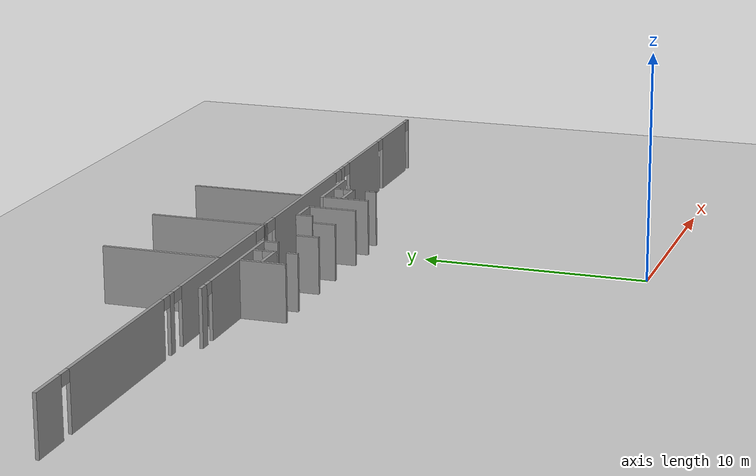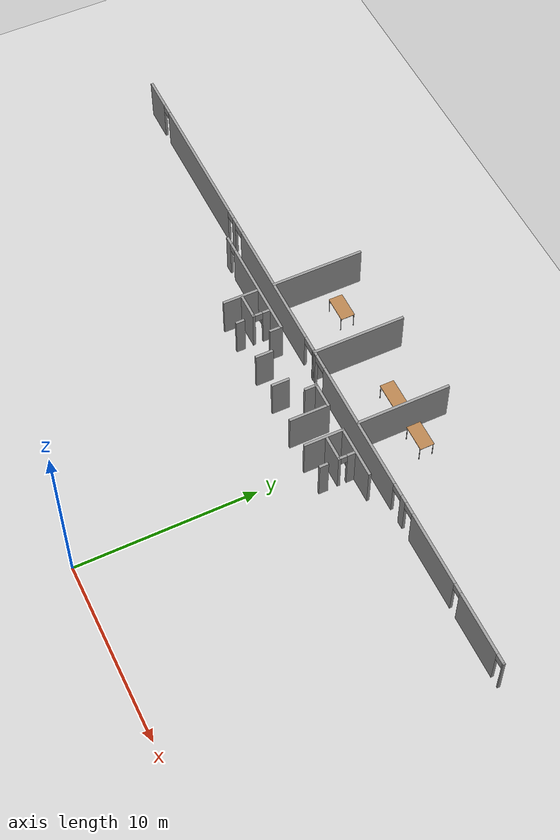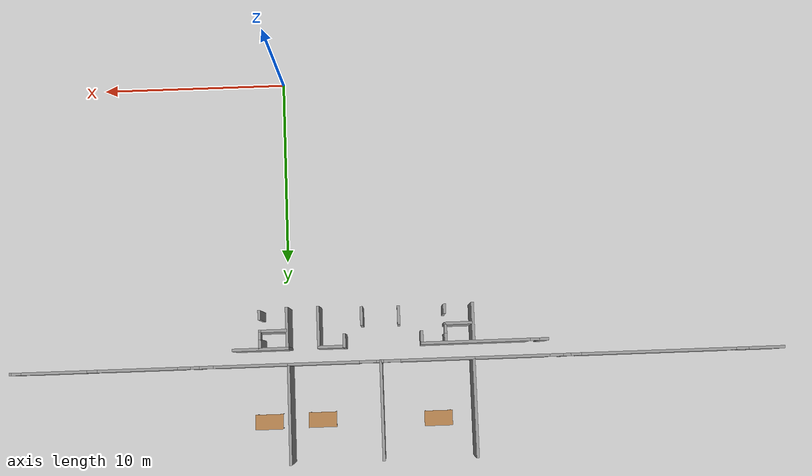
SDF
<sdf version="1.6">
 <world name="default">
  <model name="ground_plane">
   <static>1</static>
   <link name="link">
    <collision name="collision">
     <geometry><plane><normal>0 0 1</normal><size>100 100</size></plane></geometry>
     <surface><friction><ode><mu>100</mu><mu2>50</mu2></ode></friction></surface>
    </collision>
    <visual name="visual">
     <cast_shadows>0</cast_shadows>
     <geometry><plane><normal>0 0 1</normal><size>100 100</size></plane></geometry>
     <material>
      <script><uri>file://media/materials/scripts/gazebo.material</uri><name>Gazebo/Grey</name></script>
     </material>
    </visual>
   </link>
  </model>
  <model name="se1f1_fin.sdf">
   <pose>1.7543 -3.15003 0 0 -0 0</pose>
   <link name="Wall_112">
    <pose>-7.6182 18.7939 0 0 -0 0</pose>
    <visual name="Wall_112_Visual_0">
     <pose>-19.4252 0 1.25 0 -0 0</pose>
     <geometry><box><size>1.89964 0.15 2.5</size></box></geometry>
     <material>
      <script><uri>file://media/materials/scripts/gazebo.material</uri><name>Gazebo/Grey</name></script>
      <ambient>1 1 1 1</ambient>
     </material>
     <meta><layer>0</layer></meta>
    </visual>
    <collision name="Wall_112_Collision_0">
     <geometry><box><size>1.89964 0.15 2.5</size></box></geometry>
     <pose>-19.4252 0 1.25 0 -0 0</pose>
    </collision>
    <visual name="Wall_112_Visual_1">
     <pose>-13.7447 0 1.25 0 -0 0</pose>
     <geometry><box><size>8.15111 0.15 2.5</size></box></geometry>
     <material>
      <script><uri>file://media/materials/scripts/gazebo.material</uri><name>Gazebo/Grey</name></script>
      <ambient>1 1 1 1</ambient>
     </material>
     <meta><layer>0</layer></meta>
    </visual>
    <collision name="Wall_112_Collision_1">
     <geometry><box><size>8.15111 0.15 2.5</size></box></geometry>
     <pose>-13.7447 0 1.25 0 -0 0</pose>
    </collision>
    <visual name="Wall_112_Visual_2">
     <pose>-8.90866 0 1.25 0 -0 0</pose>
     <geometry><box><size>0.38552 0.15 2.5</size></box></geometry>
     <material>
      <script><uri>file://media/materials/scripts/gazebo.material</uri><name>Gazebo/Grey</name></script>
      <ambient>1 1 1 1</ambient>
     </material>
     <meta><layer>0</layer></meta>
    </visual>
    <collision name="Wall_112_Collision_2">
     <geometry><box><size>0.38552 0.15 2.5</size></box></geometry>
     <pose>-8.90866 0 1.25 0 -0 0</pose>
    </collision>
    <visual name="Wall_112_Visual_3">
     <pose>-4.07266 0 1.25 0 -0 0</pose>
     <geometry><box><size>7.83629 0.15 2.5</size></box></geometry>
     <material>
      <script><uri>file://media/materials/scripts/gazebo.material</uri><name>Gazebo/Grey</name></script>
      <ambient>1 1 1 1</ambient>
     </material>
     <meta><layer>0</layer></meta>
    </visual>
    <collision name="Wall_112_Collision_3">
     <geometry><box><size>7.83629 0.15 2.5</size></box></geometry>
     <pose>-4.07266 0 1.25 0 -0 0</pose>
    </collision>
    <visual name="Wall_112_Visual_4">
     <pose>0.933869 0 1.25 0 -0 0</pose>
     <geometry><box><size>0.376774 0.15 2.5</size></box></geometry>
     <material>
      <script><uri>file://media/materials/scripts/gazebo.material</uri><name>Gazebo/Grey</name></script>
      <ambient>1 1 1 1</ambient>
     </material>
     <meta><layer>0</layer></meta>
    </visual>
    <collision name="Wall_112_Collision_4">
     <geometry><box><size>0.376774 0.15 2.5</size></box></geometry>
     <pose>0.933869 0 1.25 0 -0 0</pose>
    </collision>
    <visual name="Wall_112_Visual_5">
     <pose>5.85295 0 1.25 0 -0 0</pose>
     <geometry><box><size>7.66139 0.15 2.5</size></box></geometry>
     <material>
      <script><uri>file://media/materials/scripts/gazebo.material</uri><name>Gazebo/Grey</name></script>
      <ambient>1 1 1 1</ambient>
     </material>
     <meta><layer>0</layer></meta>
    </visual>
    <collision name="Wall_112_Collision_5">
     <geometry><box><size>7.66139 0.15 2.5</size></box></geometry>
     <pose>5.85295 0 1.25 0 -0 0</pose>
    </collision>
    <visual name="Wall_112_Visual_6">
     <pose>10.654 0 1.25 0 -0 0</pose>
     <geometry><box><size>0.45548 0.15 2.5</size></box></geometry>
     <material>
      <script><uri>file://media/materials/scripts/gazebo.material</uri><name>Gazebo/Grey</name></script>
      <ambient>1 1 1 1</ambient>
     </material>
     <meta><layer>0</layer></meta>
    </visual>
    <collision name="Wall_112_Collision_6">
     <geometry><box><size>0.45548 0.15 2.5</size></box></geometry>
     <pose>10.654 0 1.25 0 -0 0</pose>
    </collision>
    <visual name="Wall_112_Visual_7">
     <pose>13.6666 0 1.25 0 -0 0</pose>
     <geometry><box><size>4.18961 0.15 2.5</size></box></geometry>
     <material>
      <script><uri>file://media/materials/scripts/gazebo.material</uri><name>Gazebo/Grey</name></script>
      <ambient>1 1 1 1</ambient>
     </material>
     <meta><layer>0</layer></meta>
    </visual>
    <collision name="Wall_112_Collision_7">
     <geometry><box><size>4.18961 0.15 2.5</size></box></geometry>
     <pose>13.6666 0 1.25 0 -0 0</pose>
    </collision>
    <visual name="Wall_112_Visual_8">
     <pose>18.0435 0 1.25 0 -0 0</pose>
     <geometry><box><size>3.46377 0.15 2.5</size></box></geometry>
     <material>
      <script><uri>file://media/materials/scripts/gazebo.material</uri><name>Gazebo/Grey</name></script>
      <ambient>1 1 1 1</ambient>
     </material>
     <meta><layer>0</layer></meta>
    </visual>
    <collision name="Wall_112_Collision_8">
     <geometry><box><size>3.46377 0.15 2.5</size></box></geometry>
     <pose>18.0435 0 1.25 0 -0 0</pose>
    </collision>
    <visual name="Wall_112_Visual_9">
     <pose>20.3328 0 1.25 0 -0 0</pose>
     <geometry><box><size>0.084374 0.15 2.5</size></box></geometry>
     <material>
      <script><uri>file://media/materials/scripts/gazebo.material</uri><name>Gazebo/Grey</name></script>
      <ambient>1 1 1 1</ambient>
     </material>
     <meta><layer>0</layer></meta>
    </visual>
    <collision name="Wall_112_Collision_9">
     <geometry><box><size>0.084374 0.15 2.5</size></box></geometry>
     <pose>20.3328 0 1.25 0 -0 0</pose>
    </collision>
    <visual name="Wall_112_Visual_10">
     <pose>-18.1478 0 2.25 0 -0 0</pose>
     <geometry><box><size>0.655139 0.15 0.5</size></box></geometry>
     <material>
      <script><uri>file://media/materials/scripts/gazebo.material</uri><name>Gazebo/Grey</name></script>
      <ambient>1 1 1 1</ambient>
     </material>
     <meta><layer>0</layer></meta>
    </visual>
    <collision name="Wall_112_Collision_10">
     <geometry><box><size>0.655139 0.15 0.5</size></box></geometry>
     <pose>-18.1478 0 2.25 0 -0 0</pose>
    </collision>
    <visual name="Wall_112_Visual_11">
     <pose>-9.38527 0 2.25 0 -0 0</pose>
     <geometry><box><size>0.567689 0.15 0.5</size></box></geometry>
     <material>
      <script><uri>file://media/materials/scripts/gazebo.material</uri><name>Gazebo/Grey</name></script>
      <ambient>1 1 1 1</ambient>
     </material>
     <meta><layer>0</layer></meta>
    </visual>
    <collision name="Wall_112_Collision_11">
     <geometry><box><size>0.567689 0.15 0.5</size></box></geometry>
     <pose>-9.38527 0 2.25 0 -0 0</pose>
    </collision>
    <visual name="Wall_112_Visual_12">
     <pose>-8.35335 0 2.25 0 -0 0</pose>
     <geometry><box><size>0.725099 0.15 0.5</size></box></geometry>
     <material>
      <script><uri>file://media/materials/scripts/gazebo.material</uri><name>Gazebo/Grey</name></script>
      <ambient>1 1 1 1</ambient>
     </material>
     <meta><layer>0</layer></meta>
    </visual>
    <collision name="Wall_112_Collision_12">
     <geometry><box><size>0.725099 0.15 0.5</size></box></geometry>
     <pose>-8.35335 0 2.25 0 -0 0</pose>
    </collision>
    <visual name="Wall_112_Visual_13">
     <pose>0.295482 0 2.25 0 -0 0</pose>
     <geometry><box><size>0.9 0.15 0.5</size></box></geometry>
     <material>
      <script><uri>file://media/materials/scripts/gazebo.material</uri><name>Gazebo/Grey</name></script>
      <ambient>1 1 1 1</ambient>
     </material>
     <meta><layer>0</layer></meta>
    </visual>
    <collision name="Wall_112_Collision_13">
     <geometry><box><size>0.9 0.15 0.5</size></box></geometry>
     <pose>0.295482 0 2.25 0 -0 0</pose>
    </collision>
    <visual name="Wall_112_Visual_14">
     <pose>1.57226 0 2.25 0 -0 0</pose>
     <geometry><box><size>0.9 0.15 0.5</size></box></geometry>
     <material>
      <script><uri>file://media/materials/scripts/gazebo.material</uri><name>Gazebo/Grey</name></script>
      <ambient>1 1 1 1</ambient>
     </material>
     <meta><layer>0</layer></meta>
    </visual>
    <collision name="Wall_112_Collision_14">
     <geometry><box><size>0.9 0.15 0.5</size></box></geometry>
     <pose>1.57226 0 2.25 0 -0 0</pose>
    </collision>
    <visual name="Wall_112_Visual_15">
     <pose>10.0549 0 2.25 0 -0 0</pose>
     <geometry><box><size>0.742589 0.15 0.5</size></box></geometry>
     <material>
      <script><uri>file://media/materials/scripts/gazebo.material</uri><name>Gazebo/Grey</name></script>
      <ambient>1 1 1 1</ambient>
     </material>
     <meta><layer>0</layer></meta>
    </visual>
    <collision name="Wall_112_Collision_15">
     <geometry><box><size>0.742589 0.15 0.5</size></box></geometry>
     <pose>10.0549 0 2.25 0 -0 0</pose>
    </collision>
    <visual name="Wall_112_Visual_16">
     <pose>11.2268 0 2.25 0 -0 0</pose>
     <geometry><box><size>0.690119 0.15 0.5</size></box></geometry>
     <material>
      <script><uri>file://media/materials/scripts/gazebo.material</uri><name>Gazebo/Grey</name></script>
      <ambient>1 1 1 1</ambient>
     </material>
     <meta><layer>0</layer></meta>
    </visual>
    <collision name="Wall_112_Collision_16">
     <geometry><box><size>0.690119 0.15 0.5</size></box></geometry>
     <pose>11.2268 0 2.25 0 -0 0</pose>
    </collision>
    <visual name="Wall_112_Visual_17">
     <pose>16.0365 0 2.25 0 -0 0</pose>
     <geometry><box><size>0.550199 0.15 0.5</size></box></geometry>
     <material>
      <script><uri>file://media/materials/scripts/gazebo.material</uri><name>Gazebo/Grey</name></script>
      <ambient>1 1 1 1</ambient>
     </material>
     <meta><layer>0</layer></meta>
    </visual>
    <collision name="Wall_112_Collision_17">
     <geometry><box><size>0.550199 0.15 0.5</size></box></geometry>
     <pose>16.0365 0 2.25 0 -0 0</pose>
    </collision>
    <visual name="Wall_112_Visual_18">
     <pose>20.033 0 2.25 0 -0 0</pose>
     <geometry><box><size>0.515219 0.15 0.5</size></box></geometry>
     <material>
      <script><uri>file://media/materials/scripts/gazebo.material</uri><name>Gazebo/Grey</name></script>
      <ambient>1 1 1 1</ambient>
     </material>
     <meta><layer>0</layer></meta>
    </visual>
    <collision name="Wall_112_Collision_18">
     <geometry><box><size>0.515219 0.15 0.5</size></box></geometry>
     <pose>20.033 0 2.25 0 -0 0</pose>
    </collision>
   </link>
   <link name="Wall_120">
    <collision name="Wall_120_Collision">
     <geometry><box><size>5.25 0.15 2.5</size></box></geometry>
     <pose>0 0 1.25 0 -0 0</pose>
    </collision>
    <visual name="Wall_120_Visual">
     <pose>0 0 1.25 0 -0 0</pose>
     <geometry><box><size>5.25 0.15 2.5</size></box></geometry>
     <material>
      <script><uri>file://media/materials/scripts/gazebo.material</uri><name>Gazebo/Grey</name></script>
      <ambient>1 1 1 1</ambient>
     </material>
     <meta><layer>0</layer></meta>
    </visual>
    <pose>-11.6158 21.3539 0 0 -0 1.5708</pose>
   </link>
   <link name="Wall_122">
    <collision name="Wall_122_Collision">
     <geometry><box><size>5.25 0.15 2.5</size></box></geometry>
     <pose>0 0 1.25 0 -0 0</pose>
    </collision>
    <visual name="Wall_122_Visual">
     <pose>0 0 1.25 0 -0 0</pose>
     <geometry><box><size>5.25 0.15 2.5</size></box></geometry>
     <material>
      <script><uri>file://media/materials/scripts/gazebo.material</uri><name>Gazebo/Grey</name></script>
      <ambient>1 1 1 1</ambient>
     </material>
     <meta><layer>0</layer></meta>
    </visual>
    <pose>-6.72817 21.3338 0 0 -0 1.5708</pose>
   </link>
   <link name="Wall_124">
    <collision name="Wall_124_Collision">
     <geometry><box><size>5.25 0.15 2.5</size></box></geometry>
     <pose>0 0 1.25 0 -0 0</pose>
    </collision>
    <visual name="Wall_124_Visual">
     <pose>0 0 1.25 0 -0 0</pose>
     <geometry><box><size>5.25 0.15 2.5</size></box></geometry>
     <material>
      <script><uri>file://media/materials/scripts/gazebo.material</uri><name>Gazebo/Grey</name></script>
      <ambient>1 1 1 1</ambient>
     </material>
     <meta><layer>0</layer></meta>
    </visual>
    <pose>-1.8808 21.3941 0 0 -0 1.5708</pose>
   </link>
   <link name="Wall_24">
    <pose>-12.2339 17.933 0 0 -0 0</pose>
    <visual name="Wall_24_Visual_0">
     <pose>-3.12149 0 1.25 0 -0 0</pose>
     <geometry><box><size>0.507011 0.15 2.5</size></box></geometry>
     <material>
      <script><uri>file://media/materials/scripts/gazebo.material</uri><name>Gazebo/Grey</name></script>
      <ambient>1 1 1 1</ambient>
     </material>
     <meta><layer>0</layer></meta>
    </visual>
    <collision name="Wall_24_Collision_0">
     <geometry><box><size>0.507011 0.15 2.5</size></box></geometry>
     <pose>-3.12149 0 1.25 0 -0 0</pose>
    </collision>
    <visual name="Wall_24_Visual_1">
     <pose>0.495566 0 1.25 0 -0 0</pose>
     <geometry><box><size>5.75887 0.15 2.5</size></box></geometry>
     <material>
      <script><uri>file://media/materials/scripts/gazebo.material</uri><name>Gazebo/Grey</name></script>
      <ambient>1 1 1 1</ambient>
     </material>
     <meta><layer>0</layer></meta>
    </visual>
    <collision name="Wall_24_Collision_1">
     <geometry><box><size>5.75887 0.15 2.5</size></box></geometry>
     <pose>0.495566 0 1.25 0 -0 0</pose>
    </collision>
    <visual name="Wall_24_Visual_2">
     <pose>-2.62593 0 2.25 0 -0 0</pose>
     <geometry><box><size>0.484121 0.15 0.5</size></box></geometry>
     <material>
      <script><uri>file://media/materials/scripts/gazebo.material</uri><name>Gazebo/Grey</name></script>
      <ambient>1 1 1 1</ambient>
     </material>
     <meta><layer>0</layer></meta>
    </visual>
    <collision name="Wall_24_Collision_2">
     <geometry><box><size>0.484121 0.15 0.5</size></box></geometry>
     <pose>-2.62593 0 2.25 0 -0 0</pose>
    </collision>
   </link>
   <link name="Wall_25">
    <collision name="Wall_25_Collision">
     <geometry><box><size>0.75 0.15 2.5</size></box></geometry>
     <pose>0 0 1.25 0 -0 0</pose>
    </collision>
    <visual name="Wall_25_Visual">
     <pose>0 0 1.25 0 -0 0</pose>
     <geometry><box><size>0.75 0.15 2.5</size></box></geometry>
     <material>
      <script><uri>file://media/materials/scripts/gazebo.material</uri><name>Gazebo/Grey</name></script>
      <ambient>1 1 1 1</ambient>
     </material>
     <meta><layer>0</layer></meta>
    </visual>
    <pose>-8.93387 17.633 0 0 0 -1.5708</pose>
   </link>
   <link name="Wall_27">
    <collision name="Wall_27_Collision">
     <geometry><box><size>0.75 0.15 2.5</size></box></geometry>
     <pose>0 0 1.25 0 -0 0</pose>
    </collision>
    <visual name="Wall_27_Visual">
     <pose>0 0 1.25 0 -0 0</pose>
     <geometry><box><size>0.75 0.15 2.5</size></box></geometry>
     <material>
      <script><uri>file://media/materials/scripts/gazebo.material</uri><name>Gazebo/Grey</name></script>
      <ambient>1 1 1 1</ambient>
     </material>
     <meta><layer>0</layer></meta>
    </visual>
    <pose>-4.84059 17.6493 0 0 -0 1.5708</pose>
   </link>
   <link name="Wall_29">
    <collision name="Wall_29_Collision">
     <geometry><box><size>1.5 0.15 2.5</size></box></geometry>
     <pose>0 0 1.25 0 -0 0</pose>
    </collision>
    <visual name="Wall_29_Visual">
     <pose>0 0 1.25 0 -0 0</pose>
     <geometry><box><size>1.5 0.15 2.5</size></box></geometry>
     <material>
      <script><uri>file://media/materials/scripts/gazebo.material</uri><name>Gazebo/Grey</name></script>
      <ambient>1 1 1 1</ambient>
     </material>
     <meta><layer>0</layer></meta>
    </visual>
    <pose>-4.16559 17.9493 0 0 -0 0</pose>
   </link>
   <link name="Wall_30">
    <collision name="Wall_30_Collision">
     <geometry><box><size>2.25 0.15 2.5</size></box></geometry>
     <pose>0 0 1.25 0 -0 0</pose>
    </collision>
    <visual name="Wall_30_Visual">
     <pose>0 0 1.25 0 -0 0</pose>
     <geometry><box><size>2.25 0.15 2.5</size></box></geometry>
     <material>
      <script><uri>file://media/materials/scripts/gazebo.material</uri><name>Gazebo/Grey</name></script>
      <ambient>1 1 1 1</ambient>
     </material>
     <meta><layer>0</layer></meta>
    </visual>
    <pose>-3.49059 16.8993 0 0 0 -1.5708</pose>
   </link>
   <link name="Wall_33">
    <collision name="Wall_33_Collision">
     <geometry><box><size>3 0.15 2.5</size></box></geometry>
     <pose>0 0 1.25 0 -0 0</pose>
    </collision>
    <visual name="Wall_33_Visual">
     <pose>0 0 1.25 0 -0 0</pose>
     <geometry><box><size>3 0.15 2.5</size></box></geometry>
     <material>
      <script><uri>file://media/materials/scripts/gazebo.material</uri><name>Gazebo/Grey</name></script>
      <ambient>1 1 1 1</ambient>
     </material>
     <meta><layer>0</layer></meta>
    </visual>
    <pose>-0.413543 17.9493 0 0 -0 3.14159</pose>
   </link>
   <link name="Wall_34">
    <collision name="Wall_34_Collision">
     <geometry><box><size>2.25 0.15 2.5</size></box></geometry>
     <pose>0 0 1.25 0 -0 0</pose>
    </collision>
    <visual name="Wall_34_Visual">
     <pose>0 0 1.25 0 -0 0</pose>
     <geometry><box><size>2.25 0.15 2.5</size></box></geometry>
     <material>
      <script><uri>file://media/materials/scripts/gazebo.material</uri><name>Gazebo/Grey</name></script>
      <ambient>1 1 1 1</ambient>
     </material>
     <meta><layer>0</layer></meta>
    </visual>
    <pose>-1.83854 16.8993 0 0 0 -1.5708</pose>
   </link>
   <link name="Wall_43">
    <pose>-0.398353 17.4297 0 0 0 -1.5708</pose>
    <visual name="Wall_43_Visual_0">
     <pose>-0.253497 0 1.25 0 -0 0</pose>
     <geometry><box><size>0.493006 0.15 2.5</size></box></geometry>
     <material>
      <script><uri>file://media/materials/scripts/gazebo.material</uri><name>Gazebo/Grey</name></script>
      <ambient>1 1 1 1</ambient>
     </material>
     <meta><layer>0</layer></meta>
    </visual>
    <collision name="Wall_43_Collision_0">
     <geometry><box><size>0.493006 0.15 2.5</size></box></geometry>
     <pose>-0.253497 0 1.25 0 -0 0</pose>
    </collision>
    <visual name="Wall_43_Visual_1">
     <pose>0.450756 0 1.25 0 -0 0</pose>
     <geometry><box><size>0.098488 0.15 2.5</size></box></geometry>
     <material>
      <script><uri>file://media/materials/scripts/gazebo.material</uri><name>Gazebo/Grey</name></script>
      <ambient>1 1 1 1</ambient>
     </material>
     <meta><layer>0</layer></meta>
    </visual>
    <collision name="Wall_43_Collision_1">
     <geometry><box><size>0.098488 0.15 2.5</size></box></geometry>
     <pose>0.450756 0 1.25 0 -0 0</pose>
    </collision>
    <visual name="Wall_43_Visual_2">
     <pose>0.197259 0 2.25 0 -0 0</pose>
     <geometry><box><size>0.408507 0.15 0.5</size></box></geometry>
     <material>
      <script><uri>file://media/materials/scripts/gazebo.material</uri><name>Gazebo/Grey</name></script>
      <ambient>1 1 1 1</ambient>
     </material>
     <meta><layer>0</layer></meta>
    </visual>
    <collision name="Wall_43_Collision_2">
     <geometry><box><size>0.408507 0.15 0.5</size></box></geometry>
     <pose>0.197259 0 2.25 0 -0 0</pose>
    </collision>
   </link>
   <link name="Wall_44">
    <collision name="Wall_44_Collision">
     <geometry><box><size>1.5 0.15 2.5</size></box></geometry>
     <pose>0 0 1.25 0 -0 0</pose>
    </collision>
    <visual name="Wall_44_Visual">
     <pose>0 0 1.25 0 -0 0</pose>
     <geometry><box><size>1.5 0.15 2.5</size></box></geometry>
     <material>
      <script><uri>file://media/materials/scripts/gazebo.material</uri><name>Gazebo/Grey</name></script>
      <ambient>1 1 1 1</ambient>
     </material>
     <meta><layer>0</layer></meta>
    </visual>
    <pose>-1.07335 17.0047 0 0 -0 3.14159</pose>
   </link>
   <link name="Wall_46">
    <collision name="Wall_46_Collision">
     <geometry><box><size>0.5 0.15 2.5</size></box></geometry>
     <pose>0 0 1.25 0 -0 0</pose>
    </collision>
    <visual name="Wall_46_Visual">
     <pose>0 0 1.25 0 -0 0</pose>
     <geometry><box><size>0.5 0.15 2.5</size></box></geometry>
     <material>
      <script><uri>file://media/materials/scripts/gazebo.material</uri><name>Gazebo/Grey</name></script>
      <ambient>1 1 1 1</ambient>
     </material>
     <meta><layer>0</layer></meta>
    </visual>
    <pose>-0.390648 16.1523 0 0 0 -1.5708</pose>
   </link>
   <link name="Wall_50">
    <collision name="Wall_50_Collision">
     <geometry><box><size>2 0.15 2.5</size></box></geometry>
     <pose>0 0 1.25 0 -0 0</pose>
    </collision>
    <visual name="Wall_50_Visual">
     <pose>0 0 1.25 0 -0 0</pose>
     <geometry><box><size>2 0.15 2.5</size></box></geometry>
     <material>
      <script><uri>file://media/materials/scripts/gazebo.material</uri><name>Gazebo/Grey</name></script>
      <ambient>1 1 1 1</ambient>
     </material>
     <meta><layer>0</layer></meta>
    </visual>
    <pose>-11.6546 16.8614 0 0 0 -1.5708</pose>
   </link>
   <link name="Wall_52">
    <pose>-10.1946 17.3614 0 0 0 -1.5708</pose>
    <visual name="Wall_52_Visual_0">
     <pose>-0.291417 0 1.25 0 -0 0</pose>
     <geometry><box><size>0.417167 0.15 2.5</size></box></geometry>
     <material>
      <script><uri>file://media/materials/scripts/gazebo.material</uri><name>Gazebo/Grey</name></script>
      <ambient>1 1 1 1</ambient>
     </material>
     <meta><layer>0</layer></meta>
    </visual>
    <collision name="Wall_52_Collision_0">
     <geometry><box><size>0.417167 0.15 2.5</size></box></geometry>
     <pose>-0.291417 0 1.25 0 -0 0</pose>
    </collision>
    <visual name="Wall_52_Visual_1">
     <pose>0.443082 0 1.25 0 -0 0</pose>
     <geometry><box><size>0.113835 0.15 2.5</size></box></geometry>
     <material>
      <script><uri>file://media/materials/scripts/gazebo.material</uri><name>Gazebo/Grey</name></script>
      <ambient>1 1 1 1</ambient>
     </material>
     <meta><layer>0</layer></meta>
    </visual>
    <collision name="Wall_52_Collision_1">
     <geometry><box><size>0.113835 0.15 2.5</size></box></geometry>
     <pose>0.443082 0 1.25 0 -0 0</pose>
    </collision>
    <visual name="Wall_52_Visual_2">
     <pose>0.151666 0 2.25 0 -0 0</pose>
     <geometry><box><size>0.468998 0.15 0.5</size></box></geometry>
     <material>
      <script><uri>file://media/materials/scripts/gazebo.material</uri><name>Gazebo/Grey</name></script>
      <ambient>1 1 1 1</ambient>
     </material>
     <meta><layer>0</layer></meta>
    </visual>
    <collision name="Wall_52_Collision_2">
     <geometry><box><size>0.468998 0.15 0.5</size></box></geometry>
     <pose>0.151666 0 2.25 0 -0 0</pose>
    </collision>
   </link>
   <link name="Wall_54">
    <collision name="Wall_54_Collision">
     <geometry><box><size>1.5 0.15 2.5</size></box></geometry>
     <pose>0 0 1.25 0 -0 0</pose>
    </collision>
    <visual name="Wall_54_Visual">
     <pose>0 0 1.25 0 -0 0</pose>
     <geometry><box><size>1.5 0.15 2.5</size></box></geometry>
     <material>
      <script><uri>file://media/materials/scripts/gazebo.material</uri><name>Gazebo/Grey</name></script>
      <ambient>1 1 1 1</ambient>
     </material>
     <meta><layer>0</layer></meta>
    </visual>
    <pose>-10.8696 16.9364 0 0 -0 3.14159</pose>
   </link>
   <link name="Wall_56">
    <collision name="Wall_56_Collision">
     <geometry><box><size>0.5 0.15 2.5</size></box></geometry>
     <pose>0 0 1.25 0 -0 0</pose>
    </collision>
    <visual name="Wall_56_Visual">
     <pose>0 0 1.25 0 -0 0</pose>
     <geometry><box><size>0.5 0.15 2.5</size></box></geometry>
     <material>
      <script><uri>file://media/materials/scripts/gazebo.material</uri><name>Gazebo/Grey</name></script>
      <ambient>1 1 1 1</ambient>
     </material>
     <meta><layer>0</layer></meta>
    </visual>
    <pose>-10.1746 16.1514 0 0 0 -1.5708</pose>
   </link>
   <link name="Wall_58">
    <collision name="Wall_58_Collision">
     <geometry><box><size>1 0.15 2.5</size></box></geometry>
     <pose>0 0 1.25 0 -0 0</pose>
    </collision>
    <visual name="Wall_58_Visual">
     <pose>0 0 1.25 0 -0 0</pose>
     <geometry><box><size>1 0.15 2.5</size></box></geometry>
     <material>
      <script><uri>file://media/materials/scripts/gazebo.material</uri><name>Gazebo/Grey</name></script>
      <ambient>1 1 1 1</ambient>
     </material>
     <meta><layer>0</layer></meta>
    </visual>
    <pose>-7.74461 16.4014 0 0 0 -1.5708</pose>
   </link>
   <link name="Wall_60">
    <collision name="Wall_60_Collision">
     <geometry><box><size>1 0.15 2.5</size></box></geometry>
     <pose>0 0 1.25 0 -0 0</pose>
    </collision>
    <visual name="Wall_60_Visual">
     <pose>0 0 1.25 0 -0 0</pose>
     <geometry><box><size>1 0.15 2.5</size></box></geometry>
     <material>
      <script><uri>file://media/materials/scripts/gazebo.material</uri><name>Gazebo/Grey</name></script>
      <ambient>1 1 1 1</ambient>
     </material>
     <meta><layer>0</layer></meta>
    </visual>
    <pose>-5.78461 16.3814 0 0 0 -1.5708</pose>
   </link>
   <static>1</static>
  </model>
  <model name="table_10">
   <static>1</static>
   <link name="link">
    <collision name="surface">
     <pose>0 0 1 0 -0 0</pose>
     <geometry><box><size>1.5 0.8 0.03</size></box></geometry>
     <surface><friction><ode><mu>0.6</mu><mu2>0.6</mu2></ode></friction></surface>
    </collision>
    <visual name="visual1">
     <pose>0 0 1 0 -0 0</pose>
     <geometry><box><size>1.5 0.8 0.03</size></box></geometry>
     <material>
      <script><uri>file://media/materials/scripts/gazebo.material</uri><name>Gazebo/Wood</name></script>
     </material>
    </visual>
    <collision name="front_left_leg">
     <pose>0.68 0.38 0.5 0 -0 0</pose>
     <geometry><cylinder><radius>0.02</radius><length>1</length></cylinder></geometry>
    </collision>
    <visual name="front_left_leg">
     <pose>0.68 0.38 0.5 0 -0 0</pose>
     <geometry><cylinder><radius>0.02</radius><length>1</length></cylinder></geometry>
     <material>
      <script><uri>file://media/materials/scripts/gazebo.material</uri><name>Gazebo/Grey</name></script>
     </material>
    </visual>
    <collision name="front_right_leg">
     <pose>0.68 -0.38 0.5 0 -0 0</pose>
     <geometry><cylinder><radius>0.02</radius><length>1</length></cylinder></geometry>
    </collision>
    <visual name="front_right_leg">
     <pose>0.68 -0.38 0.5 0 -0 0</pose>
     <geometry><cylinder><radius>0.02</radius><length>1</length></cylinder></geometry>
     <material>
      <script><uri>file://media/materials/scripts/gazebo.material</uri><name>Gazebo/Grey</name></script>
     </material>
    </visual>
    <collision name="back_right_leg">
     <pose>-0.68 -0.38 0.5 0 -0 0</pose>
     <geometry><cylinder><radius>0.02</radius><length>1</length></cylinder></geometry>
    </collision>
    <visual name="back_right_leg">
     <pose>-0.68 -0.38 0.5 0 -0 0</pose>
     <geometry><cylinder><radius>0.02</radius><length>1</length></cylinder></geometry>
     <material>
      <script><uri>file://media/materials/scripts/gazebo.material</uri><name>Gazebo/Grey</name></script>
     </material>
    </visual>
    <collision name="back_left_leg">
     <pose>-0.68 0.38 0.5 0 -0 0</pose>
     <geometry><cylinder><radius>0.02</radius><length>1</length></cylinder></geometry>
    </collision>
    <visual name="back_left_leg">
     <pose>-0.68 0.38 0.5 0 -0 0</pose>
     <geometry><cylinder><radius>0.02</radius><length>1</length></cylinder></geometry>
     <material>
      <script><uri>file://media/materials/scripts/gazebo.material</uri><name>Gazebo/Grey</name></script>
     </material>
    </visual>
   </link>
   <pose>-7.94428 18.7582 0 0 -0 0</pose>
  </model>
  <model name="table_11">
   <static>1</static>
   <link name="link">
    <collision name="surface">
     <pose>0 0 1 0 -0 0</pose>
     <geometry><box><size>1.5 0.8 0.03</size></box></geometry>
     <surface><friction><ode><mu>0.6</mu><mu2>0.6</mu2></ode></friction></surface>
    </collision>
    <visual name="visual1">
     <pose>0 0 1 0 -0 0</pose>
     <geometry><box><size>1.5 0.8 0.03</size></box></geometry>
     <material>
      <script><uri>file://media/materials/scripts/gazebo.material</uri><name>Gazebo/Wood</name></script>
     </material>
    </visual>
    <collision name="front_left_leg">
     <pose>0.68 0.38 0.5 0 -0 0</pose>
     <geometry><cylinder><radius>0.02</radius><length>1</length></cylinder></geometry>
    </collision>
    <visual name="front_left_leg">
     <pose>0.68 0.38 0.5 0 -0 0</pose>
     <geometry><cylinder><radius>0.02</radius><length>1</length></cylinder></geometry>
     <material>
      <script><uri>file://media/materials/scripts/gazebo.material</uri><name>Gazebo/Grey</name></script>
     </material>
    </visual>
    <collision name="front_right_leg">
     <pose>0.68 -0.38 0.5 0 -0 0</pose>
     <geometry><cylinder><radius>0.02</radius><length>1</length></cylinder></geometry>
    </collision>
    <visual name="front_right_leg">
     <pose>0.68 -0.38 0.5 0 -0 0</pose>
     <geometry><cylinder><radius>0.02</radius><length>1</length></cylinder></geometry>
     <material>
      <script><uri>file://media/materials/scripts/gazebo.material</uri><name>Gazebo/Grey</name></script>
     </material>
    </visual>
    <collision name="back_right_leg">
     <pose>-0.68 -0.38 0.5 0 -0 0</pose>
     <geometry><cylinder><radius>0.02</radius><length>1</length></cylinder></geometry>
    </collision>
    <visual name="back_right_leg">
     <pose>-0.68 -0.38 0.5 0 -0 0</pose>
     <geometry><cylinder><radius>0.02</radius><length>1</length></cylinder></geometry>
     <material>
      <script><uri>file://media/materials/scripts/gazebo.material</uri><name>Gazebo/Grey</name></script>
     </material>
    </visual>
    <collision name="back_left_leg">
     <pose>-0.68 0.38 0.5 0 -0 0</pose>
     <geometry><cylinder><radius>0.02</radius><length>1</length></cylinder></geometry>
    </collision>
    <visual name="back_left_leg">
     <pose>-0.68 0.38 0.5 0 -0 0</pose>
     <geometry><cylinder><radius>0.02</radius><length>1</length></cylinder></geometry>
     <material>
      <script><uri>file://media/materials/scripts/gazebo.material</uri><name>Gazebo/Grey</name></script>
     </material>
    </visual>
   </link>
   <pose>-1.7556 18.6251 0 0 -0 0</pose>
  </model>
  <model name="table_12">
   <static>1</static>
   <link name="link">
    <collision name="surface">
     <pose>0 0 1 0 -0 0</pose>
     <geometry><box><size>1.5 0.8 0.03</size></box></geometry>
     <surface><friction><ode><mu>0.6</mu><mu2>0.6</mu2></ode></friction></surface>
    </collision>
    <visual name="visual1">
     <pose>0 0 1 0 -0 0</pose>
     <geometry><box><size>1.5 0.8 0.03</size></box></geometry>
     <material>
      <script><uri>file://media/materials/scripts/gazebo.material</uri><name>Gazebo/Wood</name></script>
     </material>
    </visual>
    <collision name="front_left_leg">
     <pose>0.68 0.38 0.5 0 -0 0</pose>
     <geometry><cylinder><radius>0.02</radius><length>1</length></cylinder></geometry>
    </collision>
    <visual name="front_left_leg">
     <pose>0.68 0.38 0.5 0 -0 0</pose>
     <geometry><cylinder><radius>0.02</radius><length>1</length></cylinder></geometry>
     <material>
      <script><uri>file://media/materials/scripts/gazebo.material</uri><name>Gazebo/Grey</name></script>
     </material>
    </visual>
    <collision name="front_right_leg">
     <pose>0.68 -0.38 0.5 0 -0 0</pose>
     <geometry><cylinder><radius>0.02</radius><length>1</length></cylinder></geometry>
    </collision>
    <visual name="front_right_leg">
     <pose>0.68 -0.38 0.5 0 -0 0</pose>
     <geometry><cylinder><radius>0.02</radius><length>1</length></cylinder></geometry>
     <material>
      <script><uri>file://media/materials/scripts/gazebo.material</uri><name>Gazebo/Grey</name></script>
     </material>
    </visual>
    <collision name="back_right_leg">
     <pose>-0.68 -0.38 0.5 0 -0 0</pose>
     <geometry><cylinder><radius>0.02</radius><length>1</length></cylinder></geometry>
    </collision>
    <visual name="back_right_leg">
     <pose>-0.68 -0.38 0.5 0 -0 0</pose>
     <geometry><cylinder><radius>0.02</radius><length>1</length></cylinder></geometry>
     <material>
      <script><uri>file://media/materials/scripts/gazebo.material</uri><name>Gazebo/Grey</name></script>
     </material>
    </visual>
    <collision name="back_left_leg">
     <pose>-0.68 0.38 0.5 0 -0 0</pose>
     <geometry><cylinder><radius>0.02</radius><length>1</length></cylinder></geometry>
    </collision>
    <visual name="back_left_leg">
     <pose>-0.68 0.38 0.5 0 -0 0</pose>
     <geometry><cylinder><radius>0.02</radius><length>1</length></cylinder></geometry>
     <material>
      <script><uri>file://media/materials/scripts/gazebo.material</uri><name>Gazebo/Grey</name></script>
     </material>
    </visual>
   </link>
   <pose>1.10623 18.6561 0 0 -0 0</pose>
  </model>
 </world>
</sdf>
